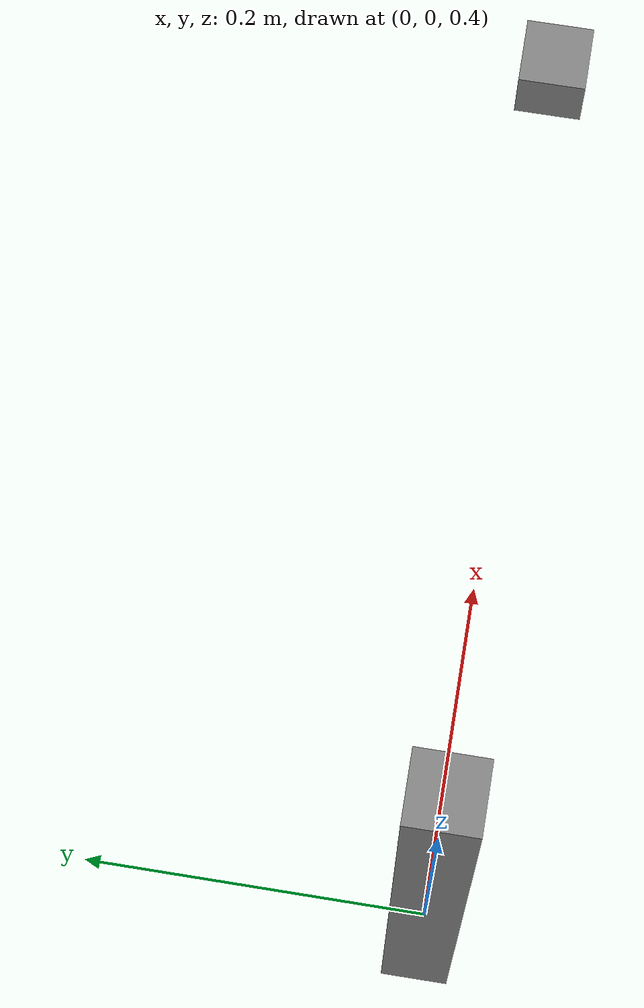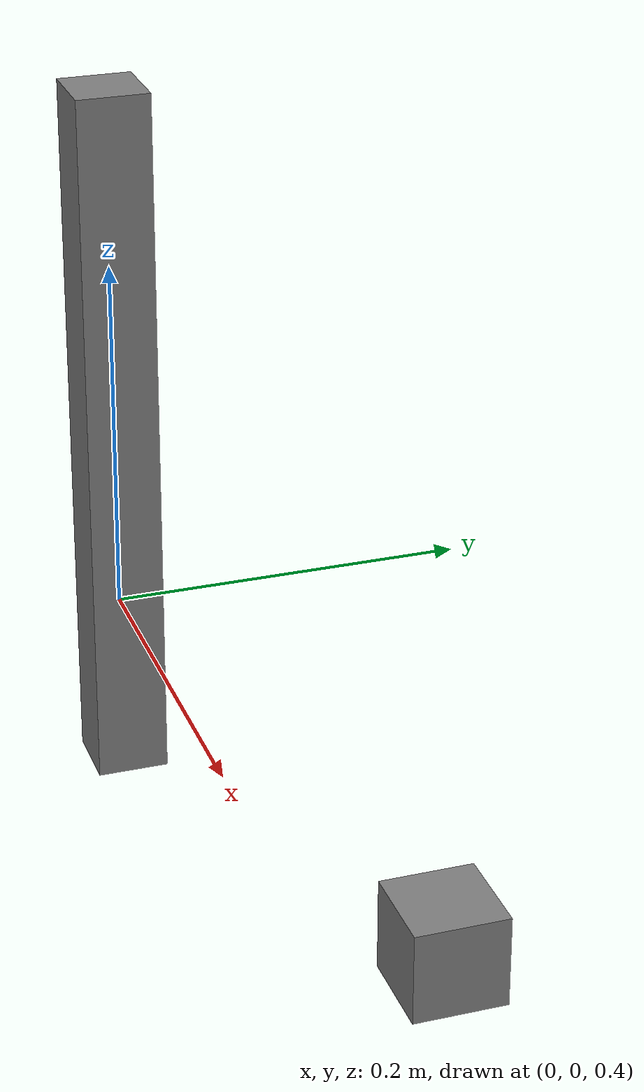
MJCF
<mujoco model="broken_prismatic">
  <worldbody>
    <body name="rail" pos="0 0 0.5">
      <geom name="rail_geom" type="box" size="0.02 0.02 0.2" mass="1.0"/>
      <body name="slider" pos="0 0 0">
        <joint name="slide" type="slide" axis="0 0 1" range="-0.1 0.1"/>
        <geom name="slider_geom" type="box" size="0.02 0.02 0.02" mass="0.2" pos="0.5 0 0"/>
      </body>
    </body>
  </worldbody>
</mujoco>
